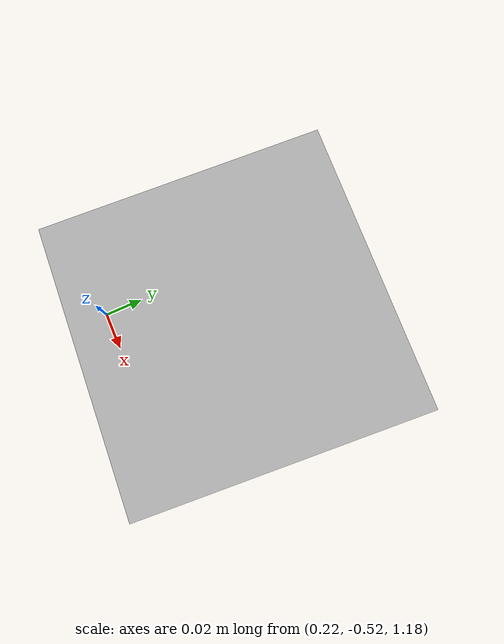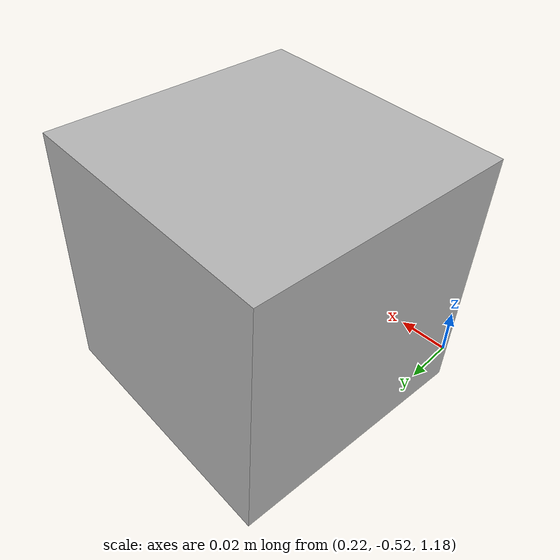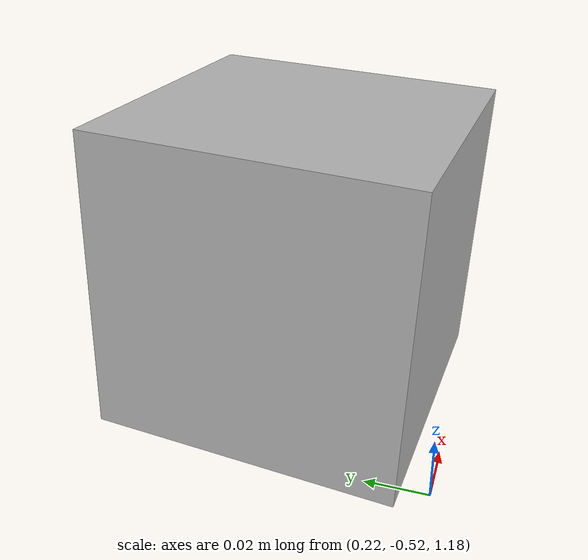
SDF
<?xml version="1.0"?>
<sdf version='1.6'>
  <world name='default'>

    <scene>
      <ambient>0.4 0.4 0.4 1</ambient>
      <background>0.7 0.7 0.7 1</background>
      <shadows>0</shadows>
    </scene>

	<model name='ground_plane'>
      <static>1</static>
      <link name='link'>
        <collision name='collision'>
          <geometry>
            <plane>
              <normal>0 0 1</normal>
              <size>100 100</size>
            </plane>
          </geometry>
          <surface>
            <contact>
              <collide_bitmask>65535</collide_bitmask>
              <ode/>
            </contact>
            <friction>
              <ode>
                <mu>100</mu>
                <mu2>50</mu2>
              </ode>
              <torsional>
                <ode/>
              </torsional>
            </friction>
            <bounce/>
          </surface>
          <max_contacts>10</max_contacts>
        </collision>
        <visual name='visual'>
          <cast_shadows>0</cast_shadows>
          <geometry>
            <plane>
              <normal>0 0 1</normal>
              <size>100 100</size>
            </plane>
          </geometry>
          <material>
            <script>
              <uri>file://media/materials/scripts/gazebo.material</uri>
              <name>Gazebo/White</name>
            </script>
          </material>
        </visual>
        <self_collide>0</self_collide>
        <enable_wind>0</enable_wind>
        <kinematic>0</kinematic>
      </link>
    </model>

  <model name="beer">
    <link name="link">
      <pose>0.3 0.0 0.0 0 0 -1.570796327</pose>
      <inertial>
        <mass>0.390</mass>
        <inertia>
          <ixx>0.00058</ixx>
          <ixy>0</ixy>
          <ixz>0</ixz>
          <iyy>0.00058</iyy>
          <iyz>0</iyz>
          <izz>0.00019</izz>
        </inertia>
      </inertial>
      <collision name="collision">
        <geometry>
		  <box>
            <size>0.800 1.400 .01</size>
          </box>
        </geometry>
      </collision>
      <visual name="visual">
        <geometry>
          <box>
            <size>0.800 1.400 .01</size>
          </box>
        </geometry>
        <material>
          <script>
            <uri>model://beer/materials/scripts</uri>
            <uri>model://beer/materials/textures</uri>
            <name>Beer/Diffuse</name>
          </script>
        </material>
      </visual>
    </link>
  </model>

    <light name='user_directional_light_0' type='directional'>
      <pose frame=''>0.0 0.0 1 0 -0 0</pose>
      <diffuse>0.5 0.5 0.5 1</diffuse>
      <specular>0.1 0.1 0.1 1</specular>
      <direction>0.1 0.1 -0.9</direction>
      <attenuation>
        <range>20</range>
        <constant>0.5</constant>
        <linear>0.01</linear>
        <quadratic>0.001</quadratic>
      </attenuation>
      <cast_shadows>1</cast_shadows>
    </light>

    <model name='camera'>
      <static>true</static>
	  <frame name='my_camera_axis'>
	  	<pose>1 1 0 0 0 0</pose>
	  </frame>
<pose>0.267887 -0.4657 1.2293 0.00248403 -0.0403394 1.50551</pose><link name='link'>
		<pose>0 0 0 0 1.570796327 1.570796327</pose>  <!--俯视-->
        <visual name='visual'>
          <geometry>
            <box>
              <size>0.1 0.1 0.1</size>
            </box>
          </geometry>W
        </visual>

        <sensor name='my_camera' type='camera'>
          <camera>
            <save enabled="true">
              <path>/tmp/camera_save_tutorial</path>
            </save>
            <horizontal_fov>1.38</horizontal_fov>
            <!--z3:FOV:92-35,HFOV79.278349193=1.38RAD -->
            <image>
              <width>1280</width>
              <height>720</height>
            </image>
            <clip>
              <near>0.1</near>
              <far>100</far>
            </clip>

          </camera>
          <always_on>1</always_on>
          <update_rate>1</update_rate>
		  <visualize>true</visualize>
        </sensor>

      </link>
    </model>

  </world>
</sdf>
